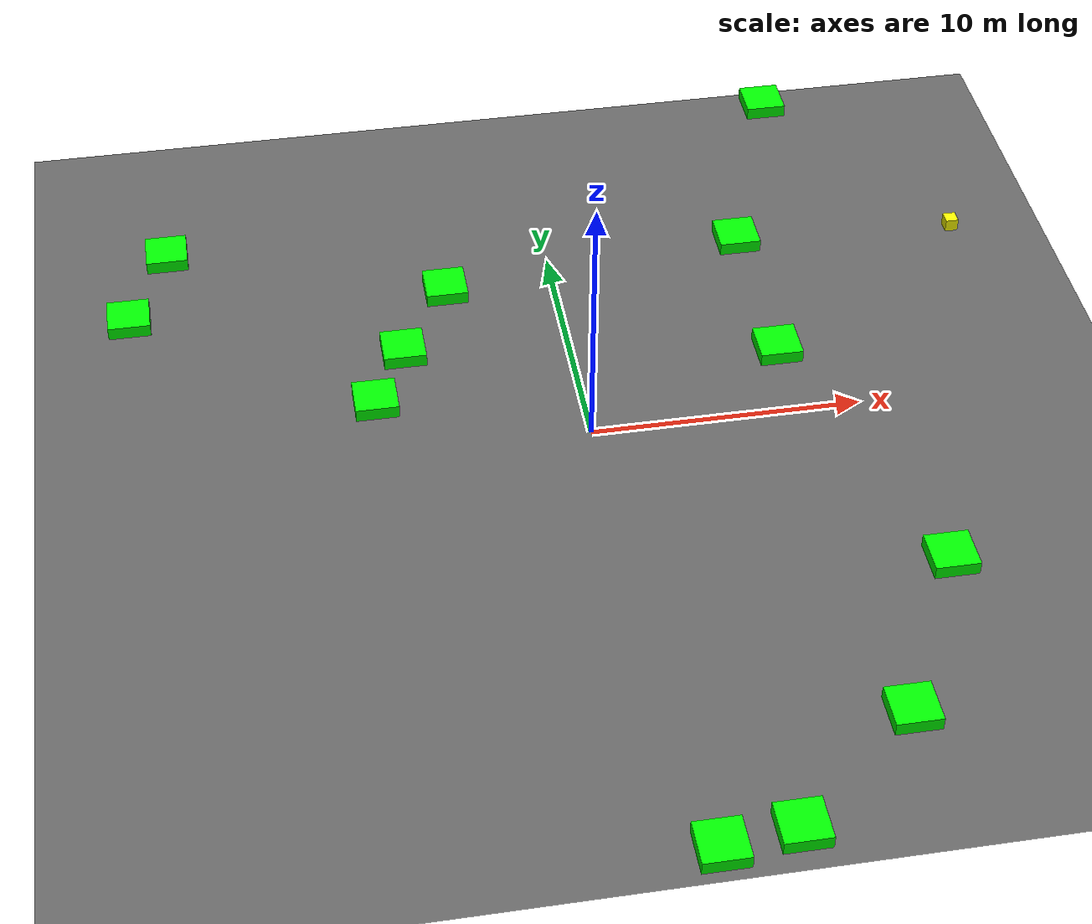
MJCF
<mujoco model="baseline_lvl5_obs12_seed4005">
    <compiler angle="degree" coordinate="local" inertiafromgeom="true"/>
    <option integrator="RK4" timestep="0.01"/>

    <asset>
        <texture builtin="gradient" height="100" rgb1="0.6 0.8 1" rgb2="0 0 0" type="skybox" width="100"/>
        <texture name="floor_texture" type="2d" builtin="checker" width="100" height="100" rgb1="0 0 0" rgb2="0.8 0.8 0.8"/>
        <material name="MatPlane" reflectance="0.5" shininess="1" specular="1" texrepeat="10 10" texture="floor_texture"/>
    </asset>

    <!-- Excluding the contact between the agent and the goal, and the agent and the floor -->
    <contact>
        <exclude body1="agent" body2="goal"/>
        <exclude body1 = "agent" body2 = "floor"/>
    </contact>

    <extension>
        <plugin plugin = "mujoco.pid">
            <instance name = "pid1">
                <config key="kp" value="2"/>
                <config key="ki" value="0"/>
                <config key="kd" value="55"/>
            </instance>
        </plugin>
    </extension>

    <worldbody>
        <light cutoff="100" diffuse="1 1 1" dir="-0 0 -1.3" directional="true" exponent="1" pos="0 0 1.3" specular=".1 .1 .1"/>
        <body name="floor" pos="0 0 0">
            <geom name="floor_geom" type="plane" size="20 20 0.1" material="MatPlane"/>
        </body>

        <!-- Goal -->
        <body name="goal" pos="12.000 -12.000 0">
            <geom name="goal_geom" type="plane" size="0.5 0.5 1" pos="0 0 0" rgba="1 0 0 1"/>
        </body>

        <!-- Agent -->
        <body name="agent" pos="16.328 9.543 0.25">
            <joint name="j1" type="slide" axis ="1 0 0 "/>
            <joint name="j2" type="slide" axis ="0 1 0 "/>
            <geom name="agent_geom" type="box" size="0.25 0.25 0.250" rgba="1 1 0 1"/>
        </body>

    <body name="obstacle1" pos="7.698 3.325 0.250">
      <geom name="obstacle1_geom" type="box"
            size="0.800 0.800 0.250"
            rgba="0 1 0 1"/>
    </body>
    <body name="obstacle2" pos="-14.802 12.538 0.250">
      <geom name="obstacle2_geom" type="box"
            size="0.800 0.800 0.250"
            rgba="0 1 0 1"/>
    </body>
    <body name="obstacle3" pos="-7.599 2.732 0.250">
      <geom name="obstacle3_geom" type="box"
            size="0.800 0.800 0.250"
            rgba="0 1 0 1"/>
    </body>
    <body name="obstacle4" pos="-16.398 8.805 0.250">
      <geom name="obstacle4_geom" type="box"
            size="0.800 0.800 0.250"
            rgba="0 1 0 1"/>
    </body>
    <body name="obstacle5" pos="10.975 -8.281 0.250">
      <geom name="obstacle5_geom" type="box"
            size="0.800 0.800 0.250"
            rgba="0 1 0 1"/>
    </body>
    <body name="obstacle6" pos="7.650 10.063 0.250">
      <geom name="obstacle6_geom" type="box"
            size="0.800 0.800 0.250"
            rgba="0 1 0 1"/>
    </body>
    <body name="obstacle7" pos="0.555 -18.867 0.250">
      <geom name="obstacle7_geom" type="box"
            size="0.800 0.800 0.250"
            rgba="0 1 0 1"/>
    </body>
    <body name="obstacle8" pos="-4.212 8.779 0.250">
      <geom name="obstacle8_geom" type="box"
            size="0.800 0.800 0.250"
            rgba="0 1 0 1"/>
    </body>
    <body name="obstacle9" pos="10.806 18.904 0.250">
      <geom name="obstacle9_geom" type="box"
            size="0.800 0.800 0.250"
            rgba="0 1 0 1"/>
    </body>
    <body name="obstacle10" pos="-6.254 5.405 0.250">
      <geom name="obstacle10_geom" type="box"
            size="0.800 0.800 0.250"
            rgba="0 1 0 1"/>
    </body>
    <body name="obstacle11" pos="7.771 -14.642 0.250">
      <geom name="obstacle11_geom" type="box"
            size="0.800 0.800 0.250"
            rgba="0 1 0 1"/>
    </body>
    <body name="obstacle12" pos="3.155 -18.554 0.250">
      <geom name="obstacle12_geom" type="box"
            size="0.800 0.800 0.250"
            rgba="0 1 0 1"/>
    </body>
    </worldbody>

    <actuator>
        <plugin joint="j1" plugin="mujoco.pid" instance="pid1" />
        <plugin joint="j2" plugin="mujoco.pid" instance="pid1"/>
    </actuator>

  <sensor>
    <distance name="dist1" geom1="agent_geom" geom2="obstacle1_geom" cutoff="1.5"/>
    <distance name="dist2" geom1="agent_geom" geom2="obstacle2_geom" cutoff="1.5"/>
    <distance name="dist3" geom1="agent_geom" geom2="obstacle3_geom" cutoff="1.5"/>
    <distance name="dist4" geom1="agent_geom" geom2="obstacle4_geom" cutoff="1.5"/>
    <distance name="dist5" geom1="agent_geom" geom2="obstacle5_geom" cutoff="1.5"/>
    <distance name="dist6" geom1="agent_geom" geom2="obstacle6_geom" cutoff="1.5"/>
    <distance name="dist7" geom1="agent_geom" geom2="obstacle7_geom" cutoff="1.5"/>
    <distance name="dist8" geom1="agent_geom" geom2="obstacle8_geom" cutoff="1.5"/>
    <distance name="dist9" geom1="agent_geom" geom2="obstacle9_geom" cutoff="1.5"/>
    <distance name="dist10" geom1="agent_geom" geom2="obstacle10_geom" cutoff="1.5"/>
    <distance name="dist11" geom1="agent_geom" geom2="obstacle11_geom" cutoff="1.5"/>
    <distance name="dist12" geom1="agent_geom" geom2="obstacle12_geom" cutoff="1.5"/>
  </sensor>
</mujoco>
